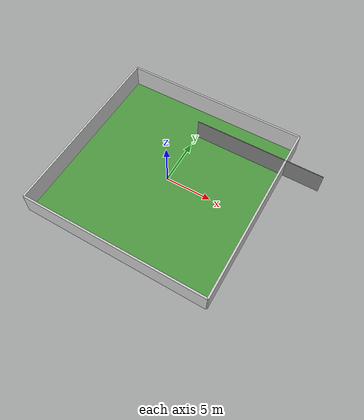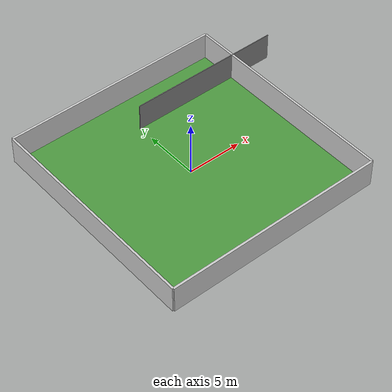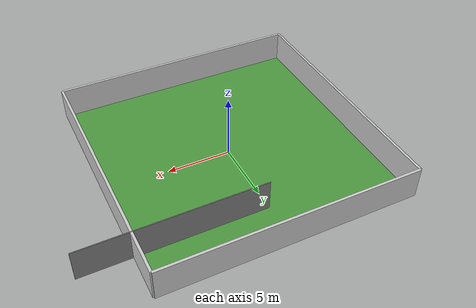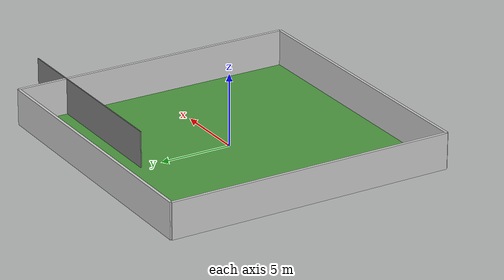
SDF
<?xml version="1.0" ?>
<sdf version="1.6">
  <world name="maze_world_c">
    <model name="maze_c">
      <static>true</static>

      <!-- Floor -->
      <link name="floor">
        <collision name="floor_collision">
          <geometry>
            <plane>
              <normal>0 0 1</normal>
              <size>20 20</size>
            </plane>
          </geometry>
        </collision>
        <visual name="floor_visual">
          <geometry>
            <plane>
              <normal>0 0 1</normal>
              <size>20 20</size>
            </plane>
          </geometry>
          <material>
            <script>
              <uri>file://media/materials/scripts/gazebo.material</uri>
              <name>Gazebo/Grass</name>
            </script>
          </material>
        </visual>
      </link>

      <!-- Walls -->
      <link name="walls">
        <!-- Outer Walls -->
        <collision name="north_wall_collision">
          <geometry>
            <box>
              <size>20 0.2 2.5</size>
            </box>
          </geometry>
          <pose>0 10 1.25 0 0 0</pose>
        </collision>
        <visual name="north_wall_visual">
          <geometry>
            <box>
              <size>20 0.2 2.5</size>
            </box>
          </geometry>
          <pose>0 10 1.25 0 0 0</pose>
          <material>
            <ambient>0.8 0.8 0.8 1</ambient>
          </material>
        </visual>

        <collision name="south_wall_collision">
          <geometry>
            <box>
              <size>20 0.2 2.5</size>
            </box>
          </geometry>
          <pose>0 -10 1.25 0 0 0</pose>
        </collision>
        <visual name="south_wall_visual">
          <geometry>
            <box>
              <size>20 0.2 2.5</size>
            </box>
          </geometry>
          <pose>0 -10 1.25 0 0 0</pose>
          <material>
            <ambient>0.8 0.8 0.8 1</ambient>
          </material>
        </visual>

        <collision name="east_wall_collision">
          <geometry>
            <box>
              <size>0.2 20 2.5</size>
            </box>
          </geometry>
          <pose>10 0 1.25 0 0 0</pose>
        </collision>
        <visual name="east_wall_visual">
          <geometry>
            <box>
              <size>0.2 20 2.5</size>
            </box>
          </geometry>
          <pose>10 0 1.25 0 0 0</pose>
          <material>
            <ambient>0.8 0.8 0.8 1</ambient>
          </material>
        </visual>

        <collision name="west_wall_collision">
          <geometry>
            <box>
              <size>0.2 20 2.5</size>
            </box>
          </geometry>
          <pose>-10 0 1.25 0 0 0</pose>
        </collision>
        <visual name="west_wall_visual">
          <geometry>
            <box>
              <size>0.2 20 2.5</size>
            </box>
          </geometry>
          <pose>-10 0 1.25 0 0 0</pose>
          <material>
            <ambient>0.8 0.8 0.8 1</ambient>
          </material>
        </visual>

        <!-- Internal Walls -->
        <!-- Vertical Walls -->

        <!-- Horizontal Walls -->
        <collision name="wall3_collision">
          <geometry>
            <box>
              <size>14 0.07 2.5</size>
            </box>
          </geometry>
          <pose>7 6.5 2.25 0 0 0</pose>
        </collision>
        <visual name="wall3_visual">
          <geometry>
            <box>
              <size>14 0.07 2.5</size>
            </box>
          </geometry>
          <pose>7 6.5 1.25 0 0 0</pose>
          <material>
            <ambient>0.5 0.5 0.5 1</ambient>
          </material>
        </visual>

        <!-- Additional Walls to Create a Labyrinth -->

        <!-- Closing Walls -->

      </link>
    </model>
  </world>
</sdf>
